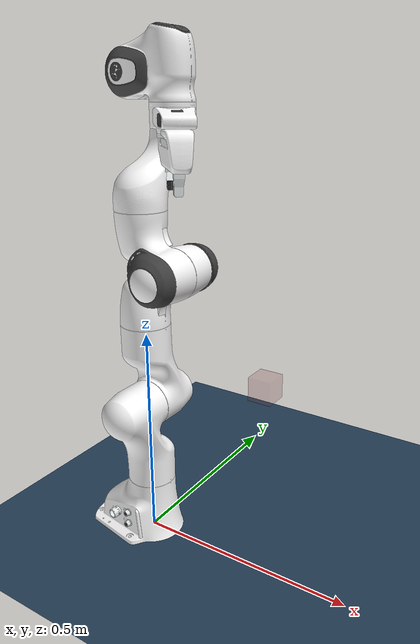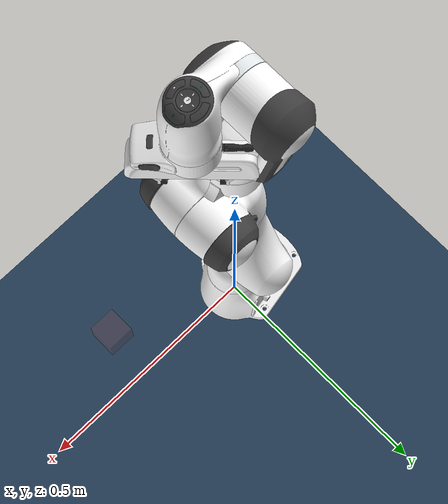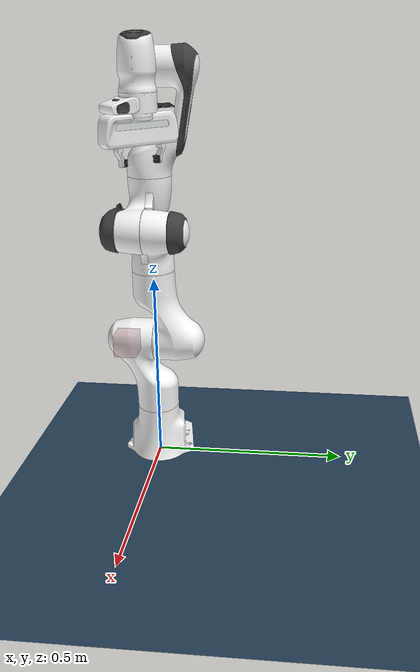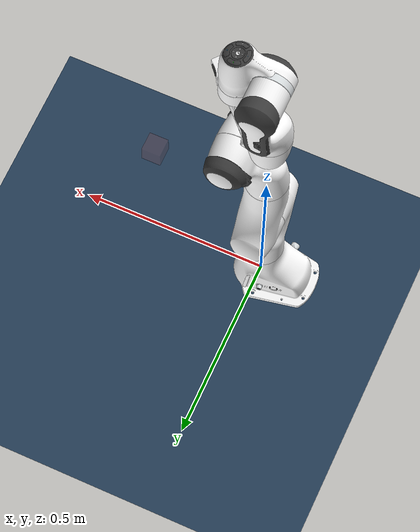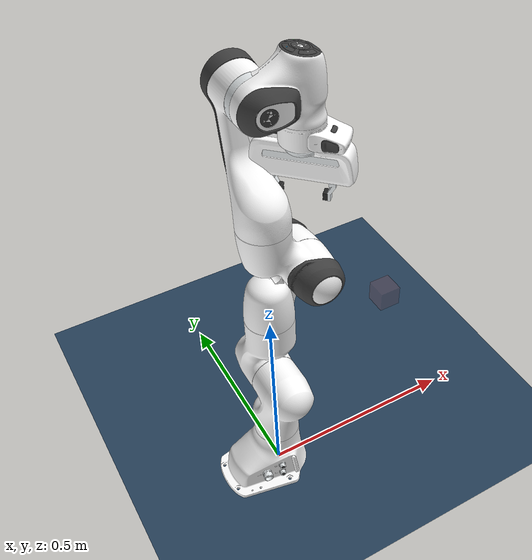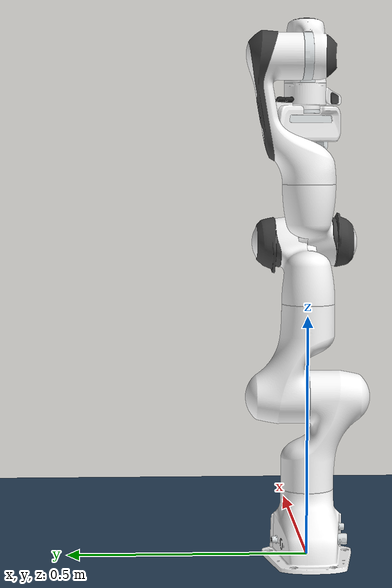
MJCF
<mujoco model="franka teleop">
  <include file="panda.xml"/>

  <option timestep=".002" noslip_iterations="5" noslip_tolerance="0"/>

  <statistic center="0.35 0 0.45" extent=".8"/>

  <visual>
    <headlight diffuse=".4 .4 .4" ambient=".5 .5 .5"/>
    <global azimuth="160" elevation="-20" offheight="128" offwidth="128"/>
    <quality offsamples="8"/>
  </visual>

  <asset>
    <texture type="skybox" builtin="gradient" rgb1=".3 .5 .7" rgb2="0 0 0" width="32" height="512"/>
    <texture name="grid" type="2d" builtin="checker" width="512" height="512" rgb1=".1 .2 .3" rgb2=".2 .3 .4"/>
    <material name="grid" texture="grid" texrepeat="2 2" texuniform="true" reflectance="0"/>
  </asset>

  <worldbody>
    <camera name="front" pos="1.3 0.0 0.7" quat="0.5963678 0.3799282 0.3799282 0.5963678" fovy="45"/>
    <light pos="0 0 3" dir="0 0 -1" diffuse="1 1 1" specular=".3 .3 .3"/>
    <geom name="floor" size="3 3 0.01" type="plane" material="grid"/>
    <body name="target" pos=".3 0 .45" quat="0 1 0 0" mocap="true">
      <geom name="target" type="box" size=".025 .025 .025" contype="0" conaffinity="0" rgba=".6 .3 .3 .25"/>
    </body>
  </worldbody>
</mujoco>

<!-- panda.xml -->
<mujoco model="panda">
  <compiler angle="radian" autolimits="true"/>

  <default>
    <default class="panda">
      <joint armature="0.1" damping="1" axis="0 0 1" range="-2.8973 2.8973"/>
      <default class="finger">
        <joint damping="5" axis="0 1 0" type="slide" range="-0.04 0"/>
      </default>
      <default class="panda/visual">
        <geom type="mesh" contype="0" conaffinity="0" group="2"/>
      </default>
      <default class="panda/collision">
        <geom type="mesh" group="3"/>
        <default class="fingertip_pad_collision_1">
          <geom type="box" size="0.0085 0.004 0.0085" pos="0 0.0055 0.0445"
            friction="1.2 0.01 0.001" solimp="0.95 0.99 0.001" solref="0.004 1" priority="1"/>
        </default>
        <default class="fingertip_pad_collision_2">
          <geom type="box" size="0.003 0.002 0.003" pos="0.0055 0.002 0.05"
            friction="1.2 0.01 0.001" solimp="0.95 0.99 0.001" solref="0.004 1" priority="1"/>
        </default>
        <default class="fingertip_pad_collision_3">
          <geom type="box" size="0.003 0.002 0.003" pos="-0.0055 0.002 0.05"
            friction="1.2 0.01 0.001" solimp="0.95 0.99 0.001" solref="0.004 1" priority="1"/>
        </default>
        <default class="fingertip_pad_collision_4">
          <geom type="box" size="0.003 0.002 0.0035" pos="0.0055 0.002 0.0395"
            friction="1.2 0.01 0.001" solimp="0.95 0.99 0.001" solref="0.004 1" priority="1"/>
        </default>
        <default class="fingertip_pad_collision_5">
          <geom type="box" size="0.003 0.002 0.0035" pos="-0.0055 0.002 0.0395"
            friction="1.2 0.01 0.001" solimp="0.95 0.99 0.001" solref="0.004 1" priority="1"/>
        </default>
      </default>
      <site size="0.001" rgba="0.5 0.5 0.5 0.3" group="4"/>
    </default>
  </default>

  <asset>
    <material name="white" rgba="1 1 1 1"/>
    <material name="off_white" rgba="0.901961 0.921569 0.929412 1"/>
    <material name="dark_grey" rgba="0.25 0.25 0.25 1"/>
    <material name="green" rgba="0 1 0 1"/>
    <material name="light_blue" rgba="0.039216 0.541176 0.780392 1"/>
    <material name="metal" rgba="0.58 0.58 0.58 1"/>
    <material name="silicone" rgba="0.1882 0.1882 0.1882 1"/>
    <material name="gray" rgba="0.4627 0.4627 0.4627 1"/>
    <material name="black" rgba="0.149 0.149 0.149 1"/>

    <mesh name="link0_c" file="franka_emika_panda/assets/link0.stl"/>
    <mesh name="link1_c" file="franka_emika_panda/assets/link1.stl"/>
    <mesh name="link2_c" file="franka_emika_panda/assets/link2.stl"/>
    <mesh name="link3_c" file="franka_emika_panda/assets/link3.stl"/>
    <mesh name="link4_c" file="franka_emika_panda/assets/link4.stl"/>
    <mesh name="link5_c0" file="franka_emika_panda/assets/link5_collision_0.obj"/>
    <mesh name="link5_c1" file="franka_emika_panda/assets/link5_collision_1.obj"/>
    <mesh name="link5_c2" file="franka_emika_panda/assets/link5_collision_2.obj"/>
    <mesh name="link6_c" file="franka_emika_panda/assets/link6.stl"/>
    <mesh name="link7_c" file="franka_emika_panda/assets/link7.stl"/>
    <mesh file="franka_emika_panda/assets/link0_0.obj"/>
    <mesh file="franka_emika_panda/assets/link0_1.obj"/>
    <mesh file="franka_emika_panda/assets/link0_2.obj"/>
    <mesh file="franka_emika_panda/assets/link0_3.obj"/>
    <mesh file="franka_emika_panda/assets/link0_4.obj"/>
    <mesh file="franka_emika_panda/assets/link0_5.obj"/>
    <mesh file="franka_emika_panda/assets/link0_7.obj"/>
    <mesh file="franka_emika_panda/assets/link0_8.obj"/>
    <mesh file="franka_emika_panda/assets/link0_9.obj"/>
    <mesh file="franka_emika_panda/assets/link0_10.obj"/>
    <mesh file="franka_emika_panda/assets/link0_11.obj"/>
    <mesh file="franka_emika_panda/assets/link1.obj"/>
    <mesh file="franka_emika_panda/assets/link2.obj"/>
    <mesh file="franka_emika_panda/assets/link3_0.obj"/>
    <mesh file="franka_emika_panda/assets/link3_1.obj"/>
    <mesh file="franka_emika_panda/assets/link3_2.obj"/>
    <mesh file="franka_emika_panda/assets/link3_3.obj"/>
    <mesh file="franka_emika_panda/assets/link4_0.obj"/>
    <mesh file="franka_emika_panda/assets/link4_1.obj"/>
    <mesh file="franka_emika_panda/assets/link4_2.obj"/>
    <mesh file="franka_emika_panda/assets/link4_3.obj"/>
    <mesh file="franka_emika_panda/assets/link5_0.obj"/>
    <mesh file="franka_emika_panda/assets/link5_1.obj"/>
    <mesh file="franka_emika_panda/assets/link5_2.obj"/>
    <mesh file="franka_emika_panda/assets/link6_0.obj"/>
    <mesh file="franka_emika_panda/assets/link6_1.obj"/>
    <mesh file="franka_emika_panda/assets/link6_2.obj"/>
    <mesh file="franka_emika_panda/assets/link6_3.obj"/>
    <mesh file="franka_emika_panda/assets/link6_4.obj"/>
    <mesh file="franka_emika_panda/assets/link6_5.obj"/>
    <mesh file="franka_emika_panda/assets/link6_6.obj"/>
    <mesh file="franka_emika_panda/assets/link6_7.obj"/>
    <mesh file="franka_emika_panda/assets/link6_8.obj"/>
    <mesh file="franka_emika_panda/assets/link6_9.obj"/>
    <mesh file="franka_emika_panda/assets/link6_10.obj"/>
    <mesh file="franka_emika_panda/assets/link6_11.obj"/>
    <mesh file="franka_emika_panda/assets/link6_12.obj"/>
    <mesh file="franka_emika_panda/assets/link6_13.obj"/>
    <mesh file="franka_emika_panda/assets/link6_14.obj"/>
    <mesh file="franka_emika_panda/assets/link6_15.obj"/>
    <mesh file="franka_emika_panda/assets/link6_16.obj"/>
    <mesh file="franka_emika_panda/assets/link7_0.obj"/>
    <mesh file="franka_emika_panda/assets/link7_1.obj"/>
    <mesh file="franka_emika_panda/assets/link7_2.obj"/>
    <mesh file="franka_emika_panda/assets/link7_3.obj"/>
    <mesh file="franka_emika_panda/assets/link7_4.obj"/>
    <mesh file="franka_emika_panda/assets/link7_5.obj"/>
    <mesh file="franka_emika_panda/assets/link7_6.obj"/>
    <mesh file="franka_emika_panda/assets/link7_7.obj"/>
    <mesh name="hand_c" file="franka_emika_panda/assets/hand.stl"/>
    <mesh file="franka_emika_panda/assets/hand_0.obj"/>
    <mesh file="franka_emika_panda/assets/hand_1.obj"/>
    <mesh file="franka_emika_panda/assets/hand_2.obj"/>
    <mesh file="franka_emika_panda/assets/hand_3.obj"/>
    <mesh file="franka_emika_panda/assets/hand_4.obj"/>
    <mesh file="franka_emika_panda/assets/finger_0.obj"/>
    <mesh file="franka_emika_panda/assets/finger_1.obj"/>
    <mesh name="01" file="gear/01.STL" scale="0.001 0.001 0.001"/>
    <mesh name="02" file="gear/02.STL" scale="0.001 0.001 0.001"/>
    <mesh name="03" file="gear/03.STL" scale="0.001 0.001 0.001"/>
    <mesh name="04" file="gear/04.STL" scale="0.001 0.001 0.001"/>
  </asset>

  <worldbody>
    <body name="link0" childclass="panda">
      <inertial mass="0.629769" pos="-0.041018 -0.00014 0.049974"
        fullinertia="0.00315 0.00388 0.004285 8.2904e-7 0.00015 8.2299e-6"/>
      <geom mesh="link0_0" material="off_white" class="panda/visual"/>
      <geom mesh="link0_1" material="dark_grey" class="panda/visual"/>
      <geom mesh="link0_2" material="off_white" class="panda/visual"/>
      <geom mesh="link0_3" material="dark_grey" class="panda/visual"/>
      <geom mesh="link0_4" material="off_white" class="panda/visual"/>
      <geom mesh="link0_5" material="dark_grey" class="panda/visual"/>
      <geom mesh="link0_7" material="white" class="panda/visual"/>
      <geom mesh="link0_8" material="white" class="panda/visual"/>
      <geom mesh="link0_9" material="dark_grey" class="panda/visual"/>
      <geom mesh="link0_10" material="off_white" class="panda/visual"/>
      <geom mesh="link0_11" material="white" class="panda/visual"/>
      <geom mesh="link0_c" class="panda/collision"/>
      <body name="link1" pos="0 0 0.333">
        <inertial mass="4.970684" pos="0.003875 0.002081 -0.04762"
          fullinertia="0.70337 0.70661 0.0091170 -0.00013900 0.0067720 0.019169"/>
        <joint name="joint1"/>
        <site name="joint1"/>
        <geom material="white" mesh="link1" class="panda/visual"/>
        <geom mesh="link1_c" class="panda/collision"/>
        <body name="link2" quat="1 -1 0 0">
          <inertial mass="0.646926" pos="-0.003141 -0.02872 0.003495"
            fullinertia="0.0079620 2.8110e-2 2.5995e-2 -3.925e-3 1.0254e-2 7.04e-4"/>
          <joint name="joint2" range="-1.7628 1.7628"/>
          <site name="joint2"/>
          <geom material="white" mesh="link2" class="panda/visual"/>
          <geom mesh="link2_c" class="panda/collision"/>
          <body name="link3" pos="0 -0.316 0" quat="1 1 0 0">
            <inertial mass="3.228604" pos="2.7518e-2 3.9252e-2 -6.6502e-2"
              fullinertia="3.7242e-2 3.6155e-2 1.083e-2 -4.761e-3 -1.1396e-2 -1.2805e-2"/>
            <joint name="joint3"/>
            <site name="joint3"/>
            <geom mesh="link3_0" material="white" class="panda/visual"/>
            <geom mesh="link3_1" material="white" class="panda/visual"/>
            <geom mesh="link3_2" material="white" class="panda/visual"/>
            <geom mesh="link3_3" material="dark_grey" class="panda/visual"/>
            <geom mesh="link3_c" class="panda/collision"/>
            <body name="link4" pos="0.0825 0 0" quat="1 1 0 0">
              <inertial mass="3.587895" pos="-5.317e-2 1.04419e-1 2.7454e-2"
                fullinertia="2.5853e-2 1.9552e-2 2.8323e-2 7.796e-3 -1.332e-3 8.641e-3"/>
              <joint name="joint4" range="-3.0718 -0.0698"/>
              <site name="joint4"/>
              <geom mesh="link4_0" material="white" class="panda/visual"/>
              <geom mesh="link4_1" material="white" class="panda/visual"/>
              <geom mesh="link4_2" material="dark_grey" class="panda/visual"/>
              <geom mesh="link4_3" material="white" class="panda/visual"/>
              <geom mesh="link4_c" class="panda/collision"/>
              <body name="link5" pos="-0.0825 0.384 0" quat="1 -1 0 0">
                <inertial mass="1.225946" pos="-1.1953e-2 4.1065e-2 -3.8437e-2"
                  fullinertia="3.5549e-2 2.9474e-2 8.627e-3 -2.117e-3 -4.037e-3 2.29e-4"/>
                <joint name="joint5"/>
                <site name="joint5"/>
                <geom mesh="link5_0" material="dark_grey" class="panda/visual"/>
                <geom mesh="link5_1" material="white" class="panda/visual"/>
                <geom mesh="link5_2" material="white" class="panda/visual"/>
                <geom mesh="link5_c0" class="panda/collision"/>
                <geom mesh="link5_c1" class="panda/collision"/>
                <geom mesh="link5_c2" class="panda/collision"/>
                <body name="link6" quat="1 1 0 0">
                  <inertial mass="1.666555" pos="6.0149e-2 -1.4117e-2 -1.0517e-2"
                    fullinertia="1.964e-3 4.354e-3 5.433e-3 1.09e-4 -1.158e-3 3.41e-4"/>
                  <joint name="joint6" range="-0.0175 3.7525"/>
                  <site name="joint6"/>
                  <geom mesh="link6_0" material="off_white" class="panda/visual"/>
                  <geom mesh="link6_1" material="white" class="panda/visual"/>
                  <geom mesh="link6_2" material="dark_grey" class="panda/visual"/>
                  <geom mesh="link6_3" material="white" class="panda/visual"/>
                  <geom mesh="link6_4" material="white" class="panda/visual"/>
                  <geom mesh="link6_5" material="white" class="panda/visual"/>
                  <geom mesh="link6_6" material="white" class="panda/visual"/>
                  <geom mesh="link6_7" material="light_blue" class="panda/visual"/>
                  <geom mesh="link6_8" material="light_blue" class="panda/visual"/>
                  <geom mesh="link6_9" material="dark_grey" class="panda/visual"/>
                  <geom mesh="link6_10" material="dark_grey" class="panda/visual"/>
                  <geom mesh="link6_11" material="white" class="panda/visual"/>
                  <geom mesh="link6_12" material="green" class="panda/visual"/>
                  <geom mesh="link6_13" material="white" class="panda/visual"/>
                  <geom mesh="link6_14" material="dark_grey" class="panda/visual"/>
                  <geom mesh="link6_15" material="dark_grey" class="panda/visual"/>
                  <geom mesh="link6_16" material="white" class="panda/visual"/>
                  <geom mesh="link6_c" class="panda/collision"/>
                  <body name="link7" pos="0.088 0 0" quat="1 1 0 0">
                    <inertial mass="7.35522e-01" pos="1.0517e-2 -4.252e-3 6.1597e-2"
                      fullinertia="1.2516e-2 1.0027e-2 4.815e-3 -4.28e-4 -1.196e-3 -7.41e-4"/>
                    <joint name="joint7"/>
                    <site name="joint7"/>
                    <geom mesh="link7_0" material="white" class="panda/visual"/>
                    <geom mesh="link7_1" material="dark_grey" class="panda/visual"/>
                    <geom mesh="link7_2" material="dark_grey" class="panda/visual"/>
                    <geom mesh="link7_3" material="dark_grey" class="panda/visual"/>
                    <geom mesh="link7_4" material="dark_grey" class="panda/visual"/>
                    <geom mesh="link7_5" material="dark_grey" class="panda/visual"/>
                    <geom mesh="link7_6" material="dark_grey" class="panda/visual"/>
                    <geom mesh="link7_7" material="white" class="panda/visual"/>
                    <geom mesh="link7_c" class="panda/collision"/>
                    <body name="hand" pos="0 0 0.107" quat="0.9238795 0 0 -0.3826834">
                      <camera name="handcam_depth" pos="-0.05 0 0" fovy="62" quat="0 1 -1 0"/>
                      <camera name="handcam_rgb" pos="-0.05 0.015 0" fovy="42.5" quat="0 1 -1 0"/>
                      <site name="attachment_site" quat="0 0 0 1"/>
                      <site name="pinch" pos="0 0 0.1035" size="0.005" rgba="0.9 0.9 0.9 1"/>
                      <inertial mass="0.73" pos="-0.01 0 0.03" diaginertia="0.001 0.0025 0.0017"/>
                      <geom mesh="hand_0" material="off_white" class="panda/visual"/>
                      <geom mesh="hand_1" material="black" class="panda/visual"/>
                      <geom mesh="hand_2" material="black" class="panda/visual"/>
                      <geom mesh="hand_3" material="white" class="panda/visual"/>
                      <geom mesh="hand_4" material="off_white" class="panda/visual"/>
                      <geom mesh="hand_c" class="panda/collision"/>
                      <body name="left_finger" pos="0 0.04 0.0584">
                        <inertial mass="0.015" pos="0 0 0" diaginertia="2.375e-6 2.375e-6 7.5e-7"/>
                        <joint name="finger_joint1" class="finger"/>
                        <geom mesh="finger_0" material="off_white" class="panda/visual"/>
                        <geom mesh="finger_1" material="black" class="panda/visual"/>
                        <geom mesh="finger_0" class="panda/collision"/>
                        <geom class="fingertip_pad_collision_1"/>
                        <geom class="fingertip_pad_collision_2"/>
                        <geom class="fingertip_pad_collision_3"/>
                        <geom class="fingertip_pad_collision_4"/>
                        <geom class="fingertip_pad_collision_5"/>
                      </body>
                      <body name="right_finger" pos="0 -0.04 0.0584" quat="0 0 0 1">
                        <inertial mass="0.015" pos="0 0 0" diaginertia="2.375e-6 2.375e-6 7.5e-7"/>
                        <joint name="finger_joint2" class="finger"/>
                        <geom mesh="finger_0" material="off_white" class="panda/visual"/>
                        <geom mesh="finger_1" material="black" class="panda/visual"/>
                        <geom mesh="finger_0" class="panda/collision"/>
                        <geom class="fingertip_pad_collision_1"/>
                        <geom class="fingertip_pad_collision_2"/>
                        <geom class="fingertip_pad_collision_3"/>
                        <geom class="fingertip_pad_collision_4"/>
                        <geom class="fingertip_pad_collision_5"/>
                      </body>
                    </body>
                  </body>
                </body>
              </body>
            </body>
          </body>
        </body>
      </body>
    </body>
  </worldbody>

  <contact>
    <exclude body1="hand" body2="left_finger"/>
    <exclude body1="hand" body2="right_finger"/>
  </contact>

  <tendon>
    <fixed name="split">
      <joint joint="finger_joint1" coef="0.5"/>
      <joint joint="finger_joint2" coef="0.5"/>
    </fixed>
  </tendon>

  <equality>
    <joint joint1="finger_joint1" joint2="finger_joint2" solimp="0.95 0.99 0.001" solref="0.005 1"/>
  </equality>

  <actuator>
    <motor class="panda" name="actuator1" joint="joint1" ctrlrange="-87 87"/>
    <motor class="panda" name="actuator2" joint="joint2" ctrlrange="-87 87"/>
    <motor class="panda" name="actuator3" joint="joint3" ctrlrange="-87 87"/>
    <motor class="panda" name="actuator4" joint="joint4" ctrlrange="-87 87"/>
    <motor class="panda" name="actuator5" joint="joint5" ctrlrange="-12 12"/>
    <motor class="panda" name="actuator6" joint="joint6" ctrlrange="-12 12"/>
    <motor class="panda" name="actuator7" joint="joint7" ctrlrange="-12 12"/>
    <general class="panda" name="fingers_actuator" tendon="split" forcerange="-40 40" ctrlrange="0 255"
      gainprm="-0.01568627451 0 0" biasprm="0 -100 0"/>
  </actuator>

  <sensor>
    <jointpos name="panda/joint1_pos" joint="joint1"/>
    <jointpos name="panda/joint2_pos" joint="joint2"/>
    <jointpos name="panda/joint3_pos" joint="joint3"/>
    <jointpos name="panda/joint4_pos" joint="joint4"/>
    <jointpos name="panda/joint5_pos" joint="joint5"/>
    <jointpos name="panda/joint6_pos" joint="joint6"/>
    <jointpos name="panda/joint7_pos" joint="joint7"/>

    <jointvel name="panda/joint1_vel" joint="joint1"/>
    <jointvel name="panda/joint2_vel" joint="joint2"/>
    <jointvel name="panda/joint3_vel" joint="joint3"/>
    <jointvel name="panda/joint4_vel" joint="joint4"/>
    <jointvel name="panda/joint5_vel" joint="joint5"/>
    <jointvel name="panda/joint6_vel" joint="joint6"/>
    <jointvel name="panda/joint7_vel" joint="joint7"/>

    <torque name="panda/joint1_torque" site="joint1"/>
    <torque name="panda/joint2_torque" site="joint2"/>
    <torque name="panda/joint3_torque" site="joint3"/>
    <torque name="panda/joint4_torque" site="joint4"/>
    <torque name="panda/joint5_torque" site="joint5"/>
    <torque name="panda/joint6_torque" site="joint6"/>
    <torque name="panda/joint7_torque" site="joint7"/>

    <force name="panda/wrist_force" site="attachment_site"/>

    <framepos name="panda/pinch_pos" objtype="site" objname="pinch"/>
    <framequat name="panda/pinch_quat" objtype="site" objname="pinch"/>
    <framelinvel name="panda/pinch_vel" objtype="site" objname="pinch"/>
  </sensor>
</mujoco>
